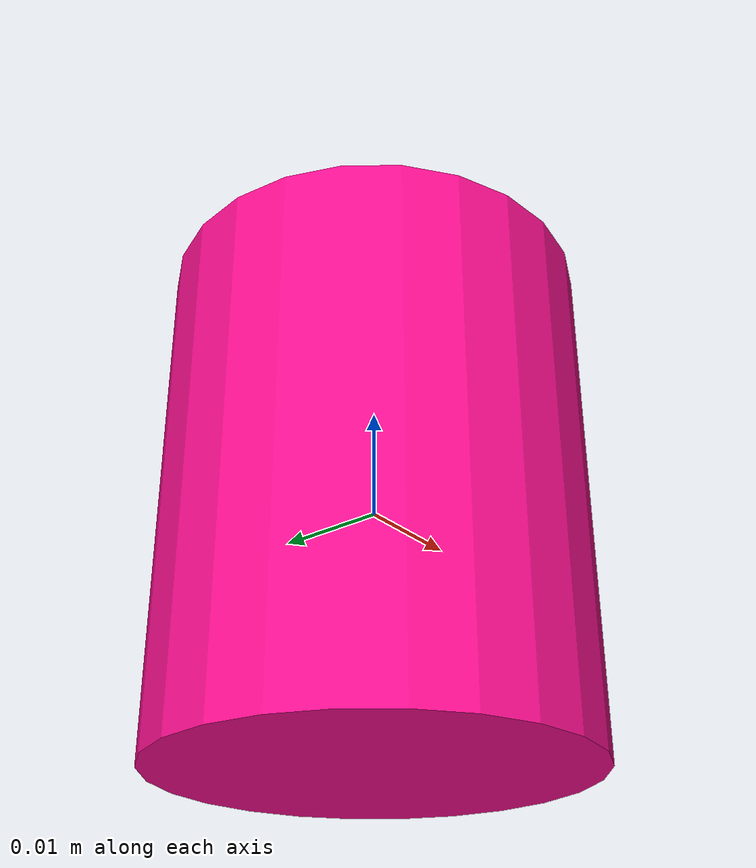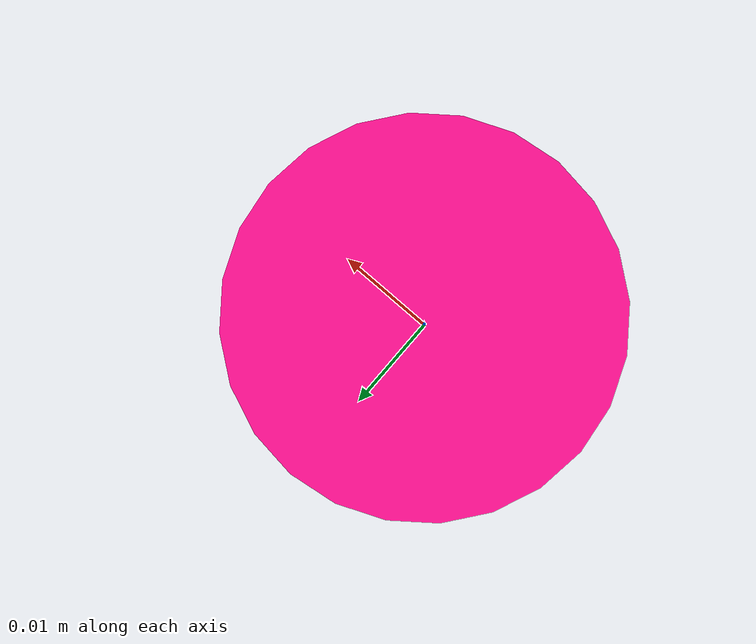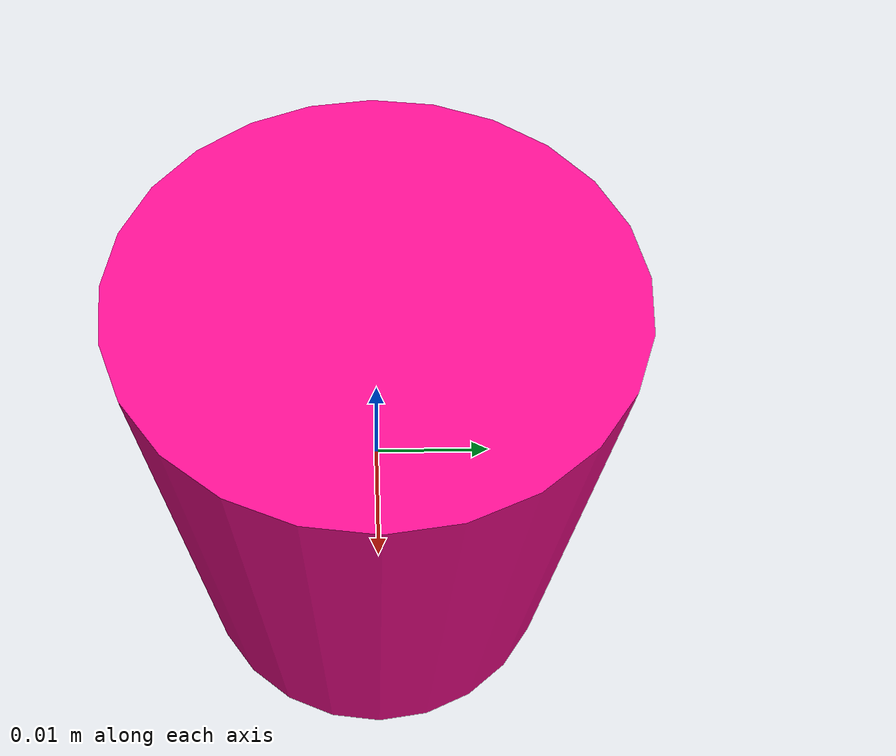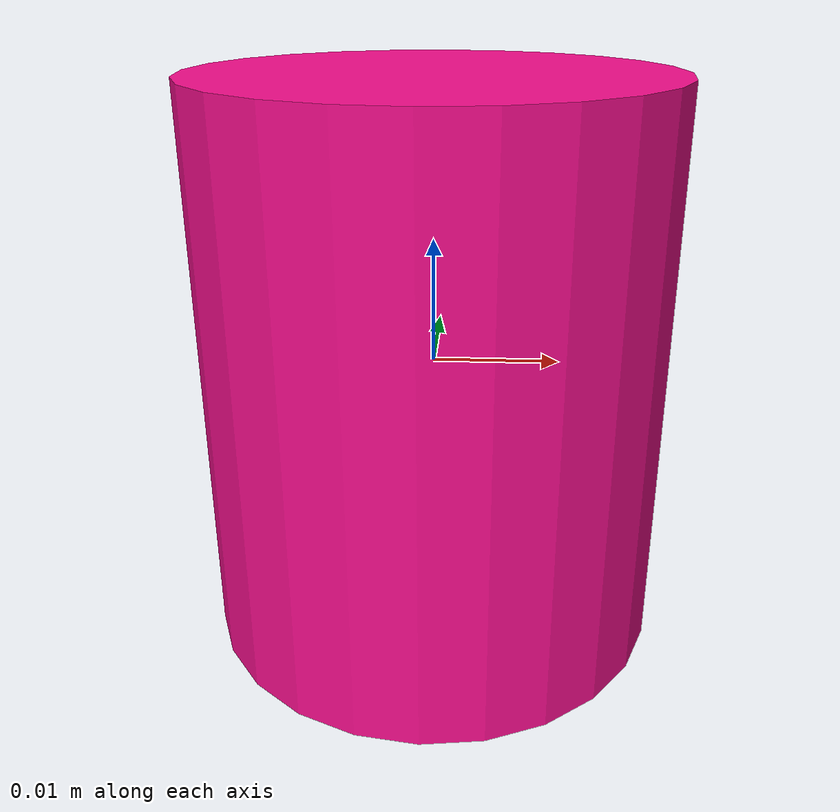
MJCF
<mujoco model="l3a3_top_block">
  <!--
    L3-A3 pivot asset B: a compact, high-contrast cylindrical load.
    Radius 18 mm, half-height 22 mm.  The visual duplicate is opaque and
    explicitly excluded from collision response.
  -->
  <asset>
    <material name="l3a3_block_magenta"
              rgba="0.96 0.05 0.55 1.00"
              specular="0.30"
              shininess="0.40"/>
  </asset>
  <worldbody>
    <body>
      <body name="object">
        <geom name="block_collision"
              type="cylinder" size="0.018 0.022"
              density="250"
              friction="0.45 0.05 0.005"
              group="0"
              rgba="0.96 0.05 0.55 1.00"
              solimp="0.998 0.998 0.001"
              solref="0.001 1"/>
        <geom name="block_visual"
              type="cylinder" size="0.0185 0.0225"
              contype="0" conaffinity="0" group="1"
              material="l3a3_block_magenta"/>
      </body>
      <site name="bottom_site" rgba="0 0 0 0" size="0.005"
            pos="0 0 -0.022"/>
      <site name="top_site" rgba="0 0 0 0" size="0.005"
            pos="0 0 0.022"/>
      <site name="horizontal_radius_site" rgba="0 0 0 0" size="0.005"
            pos="0.018 0.018 0"/>
    </body>
  </worldbody>
</mujoco>
